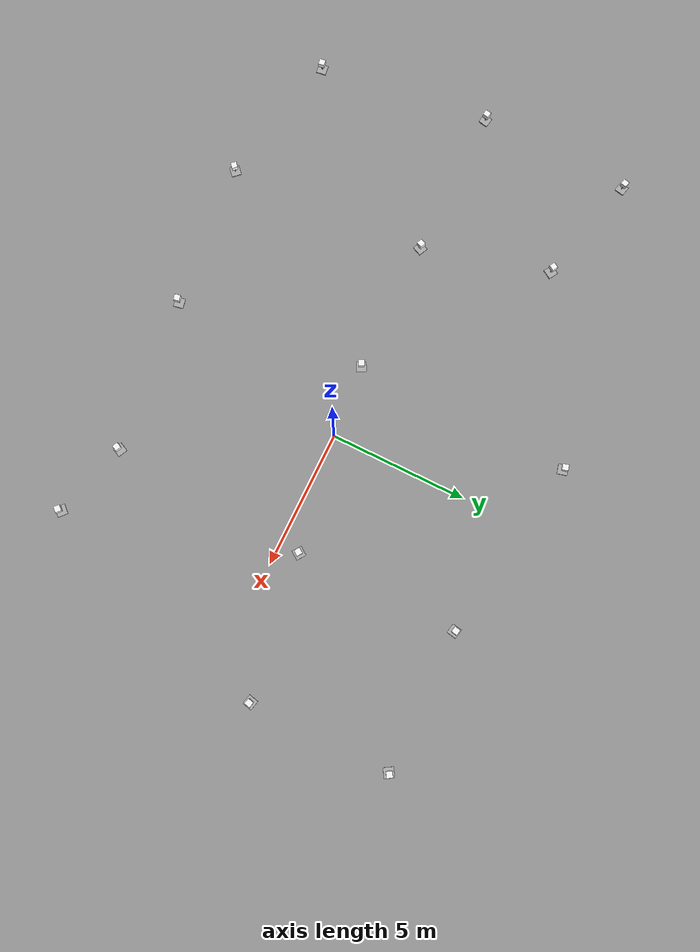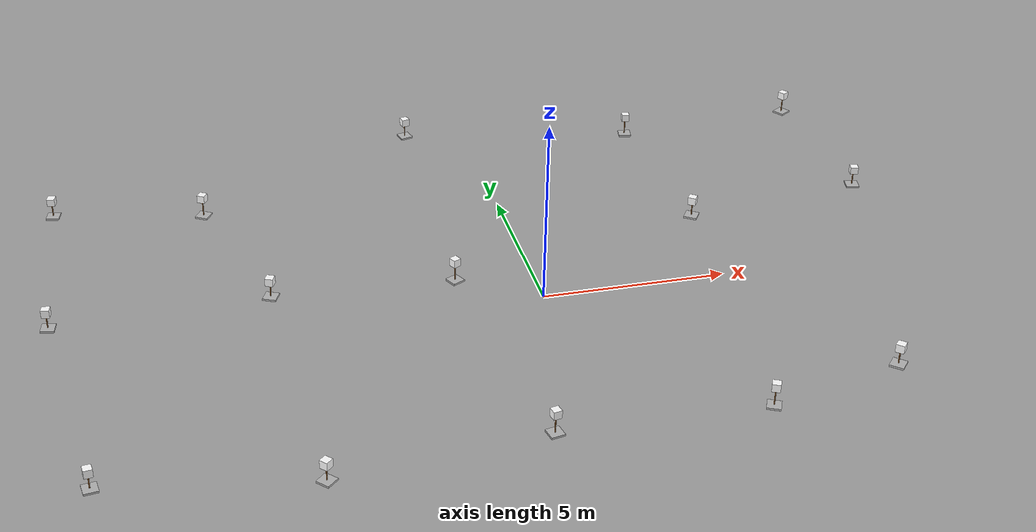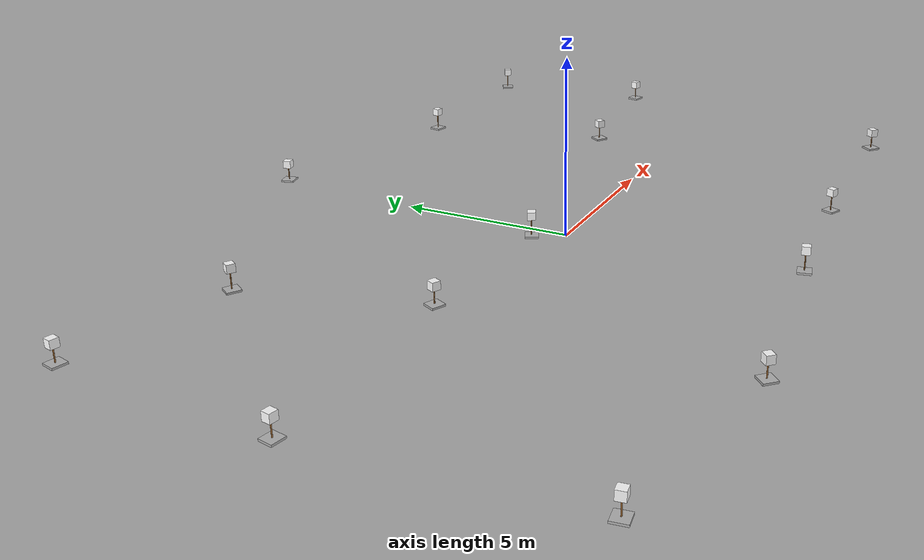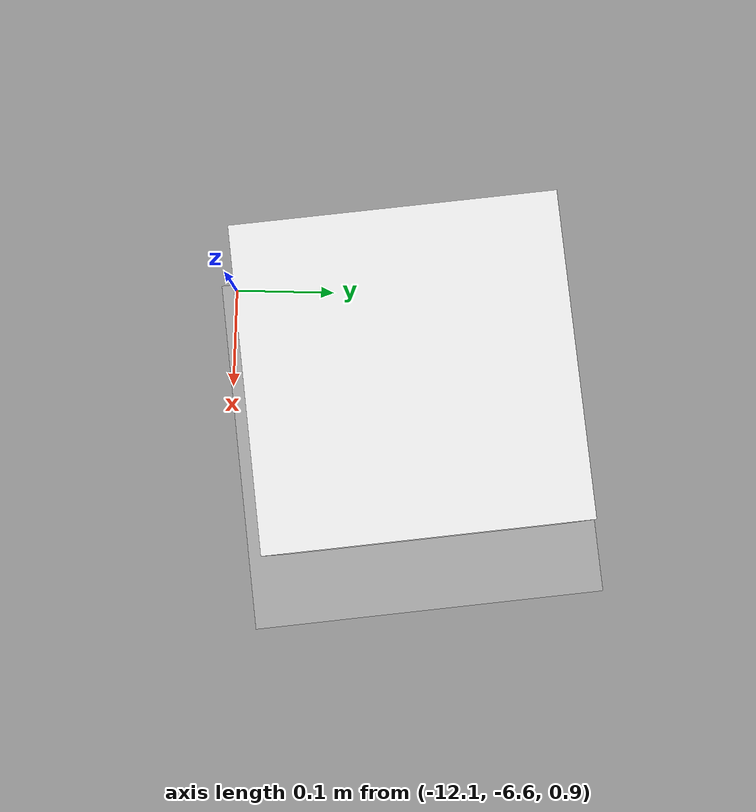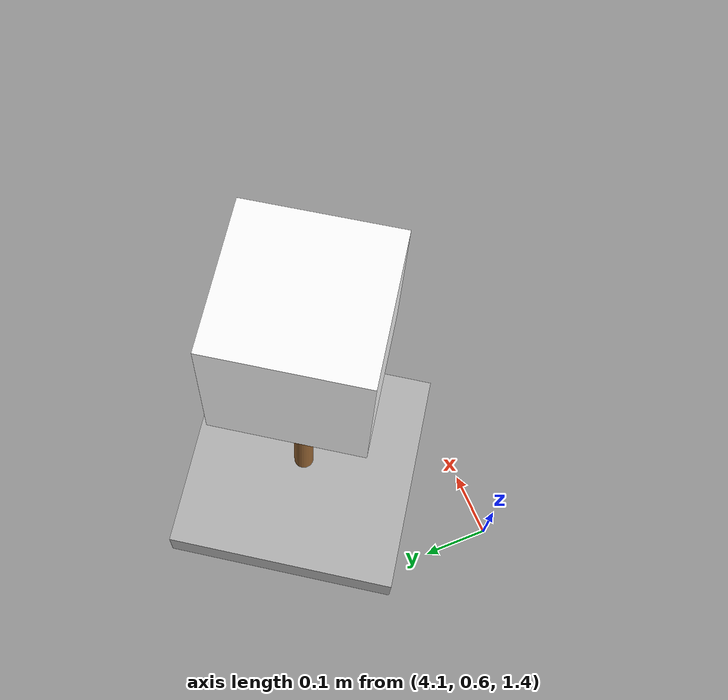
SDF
<sdf version="1.7">
 <world name="marsyard">
  <gravity>0 0 -9.81</gravity>
  <physics name="dart_physics" type="ignored">
   <max_step_size>0.003</max_step_size>
   <real_time_update_rate>333</real_time_update_rate>
   <real_time_factor>1.0</real_time_factor>
  </physics>
  <plugin filename="ignition-gazebo-physics-system" name="ignition::gazebo::systems::Physics"/>
  <plugin filename="ignition-gazebo-user-commands-system" name="ignition::gazebo::systems::UserCommands"/>
  <plugin filename="ignition-gazebo-scene-broadcaster-system" name="ignition::gazebo::systems::SceneBroadcaster"/>
  <plugin filename="ignition-gazebo-contact-system" name="ignition::gazebo::systems::Contact"/>
  <plugin filename="ignition-gazebo-sensors-system" name="ignition::gazebo::systems::Sensors">
   <render_engine>ogre2</render_engine>
  </plugin>
  <plugin filename="ignition-gazebo-imu-system" name="ignition::gazebo::systems::Imu"/>
  <plugin filename="ignition-gazebo-magnetometer-system" name="ignition::gazebo::systems::Magnetometer"/>
  <scene>
   <ambient>0.95 0.95 0.95 1</ambient>
   <background>0.70 0.70 0.70 1</background>
   <shadows>false</shadows>
  </scene>
  <light type="directional" name="sun">
   <cast_shadows>false</cast_shadows>
   <pose>0 0 30 0 0 0</pose>
   <diffuse>1 1 1 1</diffuse>
   <specular>0.15 0.15 0.15 1</specular>
   <direction>-0.35 0.1 -0.93</direction>
  </light>
  <model name="ArUco_1">
   <pose>-12.450300 5.334200 1.029715 0.000000 0.000000 2.923259</pose>
   <include><uri>model://aruco_1</uri></include>
  </model>
  <model name="ArUco_2">
   <pose>-8.450300 4.334200 1.099796 0.000000 0.000000 1.027116</pose>
   <include><uri>model://aruco_2</uri></include>
  </model>
  <model name="ArUco_3">
   <pose>-2.200300 7.584200 1.154883 0.000000 0.000000 -1.328753</pose>
   <include><uri>model://aruco_3</uri></include>
  </model>
  <model name="ArUco_4">
   <pose>4.299700 6.584200 0.990323 0.000000 0.000000 2.960046</pose>
   <include><uri>model://aruco_4</uri></include>
  </model>
  <model name="ArUco_5">
   <pose>9.299700 6.584200 1.162188 0.000000 0.000000 -2.583246</pose>
   <include><uri>model://aruco_5</uri></include>
  </model>
  <model name="ArUco_6">
   <pose>-12.700300 -0.165800 1.010542 0.000000 0.000000 -0.177926</pose>
   <include><uri>model://aruco_6</uri></include>
  </model>
  <model name="ArUco_7">
   <pose>-7.200300 -0.165800 1.131783 0.000000 0.000000 -0.438855</pose>
   <include><uri>model://aruco_7</uri></include>
  </model>
  <model name="ArUco_8">
   <pose>-2.450300 -0.165800 0.946400 0.000000 0.000000 2.031929</pose>
   <include><uri>model://aruco_8</uri></include>
  </model>
  <model name="ArUco_9">
   <pose>4.299700 0.834200 1.425683 0.000000 0.000000 -0.599702</pose>
   <include><uri>model://aruco_9</uri></include>
  </model>
  <model name="ArUco_10">
   <pose>9.299700 1.584200 1.341597 0.000000 0.000000 -0.225532</pose>
   <include><uri>model://aruco_10</uri></include>
  </model>
  <model name="ArUco_11">
   <pose>-11.950300 -6.415800 0.873342 0.000000 0.000000 -3.004204</pose>
   <include><uri>model://aruco_11</uri></include>
  </model>
  <model name="ArUco_12">
   <pose>-6.950300 -7.415800 0.976442 0.000000 0.000000 2.324719</pose>
   <include><uri>model://aruco_12</uri></include>
  </model>
  <model name="ArUco_13">
   <pose>-1.700300 -6.915800 0.976192 0.000000 0.000000 -2.940575</pose>
   <include><uri>model://aruco_13</uri></include>
  </model>
  <model name="ArUco_14">
   <pose>3.799700 -6.415800 0.451417 0.000000 0.000000 -2.017956</pose>
   <include><uri>model://aruco_14</uri></include>
  </model>
  <model name="ArUco_15">
   <pose>6.549700 -6.915800 1.544783 0.000000 0.000000 0.835951</pose>
   <include><uri>model://aruco_15</uri></include>
  </model>
 </world>
</sdf>

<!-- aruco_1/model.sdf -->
<sdf version="1.6">
  <model name="aruco_1">
    <static>true</static>
    <link name="link">
      <visual name="base_visual">
        <pose>0 0 0.025 0 0 0</pose>
        <geometry>
          <box>
            <size>0.35 0.35 0.05</size>
          </box>
        </geometry>
        <material>
          <ambient>0.7 0.7 0.7 1</ambient>
          <diffuse>0.7 0.7 0.7 1</diffuse>
        </material>
      </visual>
      <collision name="base_collision">
        <pose>0 0 0.025 0 0 0</pose>
        <geometry>
          <box>
            <size>0.35 0.35 0.05</size>
          </box>
        </geometry>
      </collision>
      <visual name="pole_visual">
        <pose>0 0 0.228500 0 0 0</pose>
        <geometry>
          <cylinder>
            <radius>0.015</radius>
            <length>0.357000</length>
          </cylinder>
        </geometry>
        <material>
          <ambient>0.6 0.4 0.2 1</ambient>
          <diffuse>0.6 0.4 0.2 1</diffuse>
        </material>
      </visual>
      <collision name="pole_collision">
        <pose>0 0 0.228500 0 0 0</pose>
        <geometry>
          <cylinder>
            <radius>0.015</radius>
            <length>0.357000</length>
          </cylinder>
        </geometry>
      </collision>
      <visual name="head_visual">
        <pose>0 0 0.496250 0 0 0</pose>
        <geometry>
          <box>
            <size>0.21 0.21 0.21</size>
          </box>
        </geometry>
        <material>
          <ambient>1 1 1 1</ambient>
          <diffuse>1 1 1 1</diffuse>
          <pbr>
            <metal>
              <albedo_map>model://aruco_1/materials/textures/marker_1.png</albedo_map>
            </metal>
          </pbr>
        </material>
      </visual>
      <collision name="head_collision">
        <pose>0 0 0.496250 0 0 0</pose>
        <geometry>
          <box>
            <size>0.21 0.21 0.21</size>
          </box>
        </geometry>
      </collision>
    </link>
  </model>
</sdf>

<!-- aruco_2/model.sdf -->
<sdf version="1.6">
  <model name="aruco_2">
    <static>true</static>
    <link name="link">
      <!-- Concrete Base -->
      <visual name="base_visual">
        <pose>0 0 0.025 0 0 0</pose>
        <geometry>
          <box>
            <size>0.35 0.35 0.05</size>
          </box>
        </geometry>
        <material>
          <ambient>0.7 0.7 0.7 1</ambient>
          <diffuse>0.7 0.7 0.7 1</diffuse>
        </material>
      </visual>
      <collision name="base_collision">
        <pose>0 0 0.025 0 0 0</pose>
        <geometry>
          <box>
            <size>0.35 0.35 0.05</size>
          </box>
        </geometry>
      </collision>

      <!-- Wooden Pole -->
      <visual name="pole_visual">
        <pose>0 0 0.26 0 0 0</pose>
        <geometry>
          <cylinder>
            <radius>0.015</radius>
            <length>0.42</length>
          </cylinder>
        </geometry>
        <material>
          <ambient>0.6 0.4 0.2 1</ambient>
          <diffuse>0.6 0.4 0.2 1</diffuse>
        </material>
      </visual>
      <collision name="pole_collision">
        <pose>0 0 0.26 0 0 0</pose>
        <geometry>
          <cylinder>
            <radius>0.015</radius>
            <length>0.42</length>
          </cylinder>
        </geometry>
      </collision>

      <!-- Head Box with ArUco Texture -->
      <visual name="head_visual">
        <pose>0 0 0.575 0 0 0</pose>
        <geometry>
          <box>
            <size>0.21 0.21 0.21</size>
          </box>
        </geometry>
        <material>
          <ambient>1 1 1 1</ambient>
          <diffuse>1 1 1 1</diffuse>
          <pbr>
            <metal>
              <albedo_map>model://aruco_2/materials/textures/marker_2.png</albedo_map>
            </metal>
          </pbr>
        </material>
      </visual>
      <collision name="head_collision">
        <pose>0 0 0.575 0 0 0</pose>
        <geometry>
          <box>
            <size>0.21 0.21 0.21</size>
          </box>
        </geometry>
      </collision>
    </link>
  </model>
</sdf>

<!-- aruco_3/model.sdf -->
<sdf version="1.6">
  <model name="aruco_3">
    <static>true</static>
    <link name="link">
      <visual name="base_visual">
        <pose>0 0 0.025 0 0 0</pose>
        <geometry>
          <box>
            <size>0.35 0.35 0.05</size>
          </box>
        </geometry>
        <material>
          <ambient>0.7 0.7 0.7 1</ambient>
          <diffuse>0.7 0.7 0.7 1</diffuse>
        </material>
      </visual>
      <collision name="base_collision">
        <pose>0 0 0.025 0 0 0</pose>
        <geometry>
          <box>
            <size>0.35 0.35 0.05</size>
          </box>
        </geometry>
      </collision>
      <visual name="pole_visual">
        <pose>0 0 0.228500 0 0 0</pose>
        <geometry>
          <cylinder>
            <radius>0.015</radius>
            <length>0.357000</length>
          </cylinder>
        </geometry>
        <material>
          <ambient>0.6 0.4 0.2 1</ambient>
          <diffuse>0.6 0.4 0.2 1</diffuse>
        </material>
      </visual>
      <collision name="pole_collision">
        <pose>0 0 0.228500 0 0 0</pose>
        <geometry>
          <cylinder>
            <radius>0.015</radius>
            <length>0.357000</length>
          </cylinder>
        </geometry>
      </collision>
      <visual name="head_visual">
        <pose>0 0 0.496250 0 0 0</pose>
        <geometry>
          <box>
            <size>0.21 0.21 0.21</size>
          </box>
        </geometry>
        <material>
          <ambient>1 1 1 1</ambient>
          <diffuse>1 1 1 1</diffuse>
          <pbr>
            <metal>
              <albedo_map>model://aruco_3/materials/textures/marker_3.png</albedo_map>
            </metal>
          </pbr>
        </material>
      </visual>
      <collision name="head_collision">
        <pose>0 0 0.496250 0 0 0</pose>
        <geometry>
          <box>
            <size>0.21 0.21 0.21</size>
          </box>
        </geometry>
      </collision>
    </link>
  </model>
</sdf>

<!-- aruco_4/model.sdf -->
<sdf version="1.6">
  <model name="aruco_4">
    <static>true</static>
    <link name="link">
      <!-- Concrete Base -->
      <visual name="base_visual">
        <pose>0 0 0.025 0 0 0</pose>
        <geometry>
          <box>
            <size>0.35 0.35 0.05</size>
          </box>
        </geometry>
        <material>
          <ambient>0.7 0.7 0.7 1</ambient>
          <diffuse>0.7 0.7 0.7 1</diffuse>
        </material>
      </visual>
      <collision name="base_collision">
        <pose>0 0 0.025 0 0 0</pose>
        <geometry>
          <box>
            <size>0.35 0.35 0.05</size>
          </box>
        </geometry>
      </collision>

      <!-- Wooden Pole -->
      <visual name="pole_visual">
        <pose>0 0 0.26 0 0 0</pose>
        <geometry>
          <cylinder>
            <radius>0.015</radius>
            <length>0.42</length>
          </cylinder>
        </geometry>
        <material>
          <ambient>0.6 0.4 0.2 1</ambient>
          <diffuse>0.6 0.4 0.2 1</diffuse>
        </material>
      </visual>
      <collision name="pole_collision">
        <pose>0 0 0.26 0 0 0</pose>
        <geometry>
          <cylinder>
            <radius>0.015</radius>
            <length>0.42</length>
          </cylinder>
        </geometry>
      </collision>

      <!-- Head Box with ArUco Texture -->
      <visual name="head_visual">
        <pose>0 0 0.575 0 0 0</pose>
        <geometry>
          <box>
            <size>0.21 0.21 0.21</size>
          </box>
        </geometry>
        <material>
          <ambient>1 1 1 1</ambient>
          <diffuse>1 1 1 1</diffuse>
          <pbr>
            <metal>
              <albedo_map>model://aruco_4/materials/textures/marker_4.png</albedo_map>
            </metal>
          </pbr>
        </material>
      </visual>
      <collision name="head_collision">
        <pose>0 0 0.575 0 0 0</pose>
        <geometry>
          <box>
            <size>0.21 0.21 0.21</size>
          </box>
        </geometry>
      </collision>
    </link>
  </model>
</sdf>

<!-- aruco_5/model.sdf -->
<sdf version="1.6">
  <model name="aruco_5">
    <static>true</static>
    <link name="link">
      <!-- Concrete Base -->
      <visual name="base_visual">
        <pose>0 0 0.025 0 0 0</pose>
        <geometry>
          <box>
            <size>0.35 0.35 0.05</size>
          </box>
        </geometry>
        <material>
          <ambient>0.7 0.7 0.7 1</ambient>
          <diffuse>0.7 0.7 0.7 1</diffuse>
        </material>
      </visual>
      <collision name="base_collision">
        <pose>0 0 0.025 0 0 0</pose>
        <geometry>
          <box>
            <size>0.35 0.35 0.05</size>
          </box>
        </geometry>
      </collision>

      <!-- Wooden Pole -->
      <visual name="pole_visual">
        <pose>0 0 0.26 0 0 0</pose>
        <geometry>
          <cylinder>
            <radius>0.015</radius>
            <length>0.42</length>
          </cylinder>
        </geometry>
        <material>
          <ambient>0.6 0.4 0.2 1</ambient>
          <diffuse>0.6 0.4 0.2 1</diffuse>
        </material>
      </visual>
      <collision name="pole_collision">
        <pose>0 0 0.26 0 0 0</pose>
        <geometry>
          <cylinder>
            <radius>0.015</radius>
            <length>0.42</length>
          </cylinder>
        </geometry>
      </collision>

      <!-- Head Box with ArUco Texture -->
      <visual name="head_visual">
        <pose>0 0 0.575 0 0 0</pose>
        <geometry>
          <box>
            <size>0.21 0.21 0.21</size>
          </box>
        </geometry>
        <material>
          <ambient>1 1 1 1</ambient>
          <diffuse>1 1 1 1</diffuse>
          <pbr>
            <metal>
              <albedo_map>model://aruco_5/materials/textures/marker_5.png</albedo_map>
            </metal>
          </pbr>
        </material>
      </visual>
      <collision name="head_collision">
        <pose>0 0 0.575 0 0 0</pose>
        <geometry>
          <box>
            <size>0.21 0.21 0.21</size>
          </box>
        </geometry>
      </collision>
    </link>
  </model>
</sdf>

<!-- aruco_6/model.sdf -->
<sdf version="1.6">
  <model name="aruco_6">
    <static>true</static>
    <link name="link">
      <visual name="base_visual">
        <pose>0 0 0.025 0 0 0</pose>
        <geometry>
          <box>
            <size>0.35 0.35 0.05</size>
          </box>
        </geometry>
        <material>
          <ambient>0.7 0.7 0.7 1</ambient>
          <diffuse>0.7 0.7 0.7 1</diffuse>
        </material>
      </visual>
      <collision name="base_collision">
        <pose>0 0 0.025 0 0 0</pose>
        <geometry>
          <box>
            <size>0.35 0.35 0.05</size>
          </box>
        </geometry>
      </collision>
      <visual name="pole_visual">
        <pose>0 0 0.228500 0 0 0</pose>
        <geometry>
          <cylinder>
            <radius>0.015</radius>
            <length>0.357000</length>
          </cylinder>
        </geometry>
        <material>
          <ambient>0.6 0.4 0.2 1</ambient>
          <diffuse>0.6 0.4 0.2 1</diffuse>
        </material>
      </visual>
      <collision name="pole_collision">
        <pose>0 0 0.228500 0 0 0</pose>
        <geometry>
          <cylinder>
            <radius>0.015</radius>
            <length>0.357000</length>
          </cylinder>
        </geometry>
      </collision>
      <visual name="head_visual">
        <pose>0 0 0.496250 0 0 0</pose>
        <geometry>
          <box>
            <size>0.21 0.21 0.21</size>
          </box>
        </geometry>
        <material>
          <ambient>1 1 1 1</ambient>
          <diffuse>1 1 1 1</diffuse>
          <pbr>
            <metal>
              <albedo_map>model://aruco_6/materials/textures/marker_6.png</albedo_map>
            </metal>
          </pbr>
        </material>
      </visual>
      <collision name="head_collision">
        <pose>0 0 0.496250 0 0 0</pose>
        <geometry>
          <box>
            <size>0.21 0.21 0.21</size>
          </box>
        </geometry>
      </collision>
    </link>
  </model>
</sdf>

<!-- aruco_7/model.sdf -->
<sdf version="1.6">
  <model name="aruco_7">
    <static>true</static>
    <link name="link">
      <visual name="base_visual">
        <pose>0 0 0.025 0 0 0</pose>
        <geometry>
          <box>
            <size>0.35 0.35 0.05</size>
          </box>
        </geometry>
        <material>
          <ambient>0.7 0.7 0.7 1</ambient>
          <diffuse>0.7 0.7 0.7 1</diffuse>
        </material>
      </visual>
      <collision name="base_collision">
        <pose>0 0 0.025 0 0 0</pose>
        <geometry>
          <box>
            <size>0.35 0.35 0.05</size>
          </box>
        </geometry>
      </collision>
      <visual name="pole_visual">
        <pose>0 0 0.228500 0 0 0</pose>
        <geometry>
          <cylinder>
            <radius>0.015</radius>
            <length>0.357000</length>
          </cylinder>
        </geometry>
        <material>
          <ambient>0.6 0.4 0.2 1</ambient>
          <diffuse>0.6 0.4 0.2 1</diffuse>
        </material>
      </visual>
      <collision name="pole_collision">
        <pose>0 0 0.228500 0 0 0</pose>
        <geometry>
          <cylinder>
            <radius>0.015</radius>
            <length>0.357000</length>
          </cylinder>
        </geometry>
      </collision>
      <visual name="head_visual">
        <pose>0 0 0.496250 0 0 0</pose>
        <geometry>
          <box>
            <size>0.21 0.21 0.21</size>
          </box>
        </geometry>
        <material>
          <ambient>1 1 1 1</ambient>
          <diffuse>1 1 1 1</diffuse>
          <pbr>
            <metal>
              <albedo_map>model://aruco_7/materials/textures/marker_7.png</albedo_map>
            </metal>
          </pbr>
        </material>
      </visual>
      <collision name="head_collision">
        <pose>0 0 0.496250 0 0 0</pose>
        <geometry>
          <box>
            <size>0.21 0.21 0.21</size>
          </box>
        </geometry>
      </collision>
    </link>
  </model>
</sdf>

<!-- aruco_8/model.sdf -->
<sdf version="1.6">
  <model name="aruco_8">
    <static>true</static>
    <link name="link">
      <!-- Concrete Base -->
      <visual name="base_visual">
        <pose>0 0 0.025 0 0 0</pose>
        <geometry>
          <box>
            <size>0.35 0.35 0.05</size>
          </box>
        </geometry>
        <material>
          <ambient>0.7 0.7 0.7 1</ambient>
          <diffuse>0.7 0.7 0.7 1</diffuse>
        </material>
      </visual>
      <collision name="base_collision">
        <pose>0 0 0.025 0 0 0</pose>
        <geometry>
          <box>
            <size>0.35 0.35 0.05</size>
          </box>
        </geometry>
      </collision>

      <!-- Wooden Pole -->
      <visual name="pole_visual">
        <pose>0 0 0.26 0 0 0</pose>
        <geometry>
          <cylinder>
            <radius>0.015</radius>
            <length>0.42</length>
          </cylinder>
        </geometry>
        <material>
          <ambient>0.6 0.4 0.2 1</ambient>
          <diffuse>0.6 0.4 0.2 1</diffuse>
        </material>
      </visual>
      <collision name="pole_collision">
        <pose>0 0 0.26 0 0 0</pose>
        <geometry>
          <cylinder>
            <radius>0.015</radius>
            <length>0.42</length>
          </cylinder>
        </geometry>
      </collision>

      <!-- Head Box with ArUco Texture -->
      <visual name="head_visual">
        <pose>0 0 0.575 0 0 0</pose>
        <geometry>
          <box>
            <size>0.21 0.21 0.21</size>
          </box>
        </geometry>
        <material>
          <ambient>1 1 1 1</ambient>
          <diffuse>1 1 1 1</diffuse>
          <pbr>
            <metal>
              <albedo_map>model://aruco_8/materials/textures/marker_8.png</albedo_map>
            </metal>
          </pbr>
        </material>
      </visual>
      <collision name="head_collision">
        <pose>0 0 0.575 0 0 0</pose>
        <geometry>
          <box>
            <size>0.21 0.21 0.21</size>
          </box>
        </geometry>
      </collision>
    </link>
  </model>
</sdf>

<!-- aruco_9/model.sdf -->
<sdf version="1.6">
  <model name="aruco_9">
    <static>true</static>
    <link name="link">
      <visual name="base_visual">
        <pose>0 0 0.025 0 0 0</pose>
        <geometry>
          <box>
            <size>0.35 0.35 0.05</size>
          </box>
        </geometry>
        <material>
          <ambient>0.7 0.7 0.7 1</ambient>
          <diffuse>0.7 0.7 0.7 1</diffuse>
        </material>
      </visual>
      <collision name="base_collision">
        <pose>0 0 0.025 0 0 0</pose>
        <geometry>
          <box>
            <size>0.35 0.35 0.05</size>
          </box>
        </geometry>
      </collision>
      <visual name="pole_visual">
        <pose>0 0 0.228500 0 0 0</pose>
        <geometry>
          <cylinder>
            <radius>0.015</radius>
            <length>0.357000</length>
          </cylinder>
        </geometry>
        <material>
          <ambient>0.6 0.4 0.2 1</ambient>
          <diffuse>0.6 0.4 0.2 1</diffuse>
        </material>
      </visual>
      <collision name="pole_collision">
        <pose>0 0 0.228500 0 0 0</pose>
        <geometry>
          <cylinder>
            <radius>0.015</radius>
            <length>0.357000</length>
          </cylinder>
        </geometry>
      </collision>
      <visual name="head_visual">
        <pose>0 0 0.496250 0 0 0</pose>
        <geometry>
          <box>
            <size>0.21 0.21 0.21</size>
          </box>
        </geometry>
        <material>
          <ambient>1 1 1 1</ambient>
          <diffuse>1 1 1 1</diffuse>
          <pbr>
            <metal>
              <albedo_map>model://aruco_9/materials/textures/marker_9.png</albedo_map>
            </metal>
          </pbr>
        </material>
      </visual>
      <collision name="head_collision">
        <pose>0 0 0.496250 0 0 0</pose>
        <geometry>
          <box>
            <size>0.21 0.21 0.21</size>
          </box>
        </geometry>
      </collision>
    </link>
  </model>
</sdf>

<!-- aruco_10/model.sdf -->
<sdf version="1.6">
  <model name="aruco_10">
    <static>true</static>
    <link name="link">
      <visual name="base_visual">
        <pose>0 0 0.025 0 0 0</pose>
        <geometry>
          <box>
            <size>0.35 0.35 0.05</size>
          </box>
        </geometry>
        <material>
          <ambient>0.7 0.7 0.7 1</ambient>
          <diffuse>0.7 0.7 0.7 1</diffuse>
        </material>
      </visual>
      <collision name="base_collision">
        <pose>0 0 0.025 0 0 0</pose>
        <geometry>
          <box>
            <size>0.35 0.35 0.05</size>
          </box>
        </geometry>
      </collision>
      <visual name="pole_visual">
        <pose>0 0 0.228500 0 0 0</pose>
        <geometry>
          <cylinder>
            <radius>0.015</radius>
            <length>0.357000</length>
          </cylinder>
        </geometry>
        <material>
          <ambient>0.6 0.4 0.2 1</ambient>
          <diffuse>0.6 0.4 0.2 1</diffuse>
        </material>
      </visual>
      <collision name="pole_collision">
        <pose>0 0 0.228500 0 0 0</pose>
        <geometry>
          <cylinder>
            <radius>0.015</radius>
            <length>0.357000</length>
          </cylinder>
        </geometry>
      </collision>
      <visual name="head_visual">
        <pose>0 0 0.496250 0 0 0</pose>
        <geometry>
          <box>
            <size>0.21 0.21 0.21</size>
          </box>
        </geometry>
        <material>
          <ambient>1 1 1 1</ambient>
          <diffuse>1 1 1 1</diffuse>
          <pbr>
            <metal>
              <albedo_map>model://aruco_10/materials/textures/marker_10.png</albedo_map>
            </metal>
          </pbr>
        </material>
      </visual>
      <collision name="head_collision">
        <pose>0 0 0.496250 0 0 0</pose>
        <geometry>
          <box>
            <size>0.21 0.21 0.21</size>
          </box>
        </geometry>
      </collision>
    </link>
  </model>
</sdf>

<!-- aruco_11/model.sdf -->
<sdf version="1.6">
  <model name="aruco_11">
    <static>true</static>
    <link name="link">
      <visual name="base_visual">
        <pose>0 0 0.025 0 0 0</pose>
        <geometry>
          <box>
            <size>0.35 0.35 0.05</size>
          </box>
        </geometry>
        <material>
          <ambient>0.7 0.7 0.7 1</ambient>
          <diffuse>0.7 0.7 0.7 1</diffuse>
        </material>
      </visual>
      <collision name="base_collision">
        <pose>0 0 0.025 0 0 0</pose>
        <geometry>
          <box>
            <size>0.35 0.35 0.05</size>
          </box>
        </geometry>
      </collision>
      <visual name="pole_visual">
        <pose>0 0 0.228500 0 0 0</pose>
        <geometry>
          <cylinder>
            <radius>0.015</radius>
            <length>0.357000</length>
          </cylinder>
        </geometry>
        <material>
          <ambient>0.6 0.4 0.2 1</ambient>
          <diffuse>0.6 0.4 0.2 1</diffuse>
        </material>
      </visual>
      <collision name="pole_collision">
        <pose>0 0 0.228500 0 0 0</pose>
        <geometry>
          <cylinder>
            <radius>0.015</radius>
            <length>0.357000</length>
          </cylinder>
        </geometry>
      </collision>
      <visual name="head_visual">
        <pose>0 0 0.496250 0 0 0</pose>
        <geometry>
          <box>
            <size>0.21 0.21 0.21</size>
          </box>
        </geometry>
        <material>
          <ambient>1 1 1 1</ambient>
          <diffuse>1 1 1 1</diffuse>
          <pbr>
            <metal>
              <albedo_map>model://aruco_11/materials/textures/marker_11.png</albedo_map>
            </metal>
          </pbr>
        </material>
      </visual>
      <collision name="head_collision">
        <pose>0 0 0.496250 0 0 0</pose>
        <geometry>
          <box>
            <size>0.21 0.21 0.21</size>
          </box>
        </geometry>
      </collision>
    </link>
  </model>
</sdf>

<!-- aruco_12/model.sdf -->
<sdf version="1.6">
  <model name="aruco_12">
    <static>true</static>
    <link name="link">
      <visual name="base_visual">
        <pose>0 0 0.025 0 0 0</pose>
        <geometry>
          <box>
            <size>0.35 0.35 0.05</size>
          </box>
        </geometry>
        <material>
          <ambient>0.7 0.7 0.7 1</ambient>
          <diffuse>0.7 0.7 0.7 1</diffuse>
        </material>
      </visual>
      <collision name="base_collision">
        <pose>0 0 0.025 0 0 0</pose>
        <geometry>
          <box>
            <size>0.35 0.35 0.05</size>
          </box>
        </geometry>
      </collision>
      <visual name="pole_visual">
        <pose>0 0 0.228500 0 0 0</pose>
        <geometry>
          <cylinder>
            <radius>0.015</radius>
            <length>0.357000</length>
          </cylinder>
        </geometry>
        <material>
          <ambient>0.6 0.4 0.2 1</ambient>
          <diffuse>0.6 0.4 0.2 1</diffuse>
        </material>
      </visual>
      <collision name="pole_collision">
        <pose>0 0 0.228500 0 0 0</pose>
        <geometry>
          <cylinder>
            <radius>0.015</radius>
            <length>0.357000</length>
          </cylinder>
        </geometry>
      </collision>
      <visual name="head_visual">
        <pose>0 0 0.496250 0 0 0</pose>
        <geometry>
          <box>
            <size>0.21 0.21 0.21</size>
          </box>
        </geometry>
        <material>
          <ambient>1 1 1 1</ambient>
          <diffuse>1 1 1 1</diffuse>
          <pbr>
            <metal>
              <albedo_map>model://aruco_12/materials/textures/marker_12.png</albedo_map>
            </metal>
          </pbr>
        </material>
      </visual>
      <collision name="head_collision">
        <pose>0 0 0.496250 0 0 0</pose>
        <geometry>
          <box>
            <size>0.21 0.21 0.21</size>
          </box>
        </geometry>
      </collision>
    </link>
  </model>
</sdf>

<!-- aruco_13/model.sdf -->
<sdf version="1.6">
  <model name="aruco_13">
    <static>true</static>
    <link name="link">
      <!-- Concrete Base -->
      <visual name="base_visual">
        <pose>0 0 0.025 0 0 0</pose>
        <geometry>
          <box>
            <size>0.35 0.35 0.05</size>
          </box>
        </geometry>
        <material>
          <ambient>0.7 0.7 0.7 1</ambient>
          <diffuse>0.7 0.7 0.7 1</diffuse>
        </material>
      </visual>
      <collision name="base_collision">
        <pose>0 0 0.025 0 0 0</pose>
        <geometry>
          <box>
            <size>0.35 0.35 0.05</size>
          </box>
        </geometry>
      </collision>

      <!-- Wooden Pole -->
      <visual name="pole_visual">
        <pose>0 0 0.26 0 0 0</pose>
        <geometry>
          <cylinder>
            <radius>0.015</radius>
            <length>0.42</length>
          </cylinder>
        </geometry>
        <material>
          <ambient>0.6 0.4 0.2 1</ambient>
          <diffuse>0.6 0.4 0.2 1</diffuse>
        </material>
      </visual>
      <collision name="pole_collision">
        <pose>0 0 0.26 0 0 0</pose>
        <geometry>
          <cylinder>
            <radius>0.015</radius>
            <length>0.42</length>
          </cylinder>
        </geometry>
      </collision>

      <!-- Head Box with ArUco Texture -->
      <visual name="head_visual">
        <pose>0 0 0.575 0 0 0</pose>
        <geometry>
          <box>
            <size>0.21 0.21 0.21</size>
          </box>
        </geometry>
        <material>
          <ambient>1 1 1 1</ambient>
          <diffuse>1 1 1 1</diffuse>
          <pbr>
            <metal>
              <albedo_map>model://aruco_13/materials/textures/marker_13.png</albedo_map>
            </metal>
          </pbr>
        </material>
      </visual>
      <collision name="head_collision">
        <pose>0 0 0.575 0 0 0</pose>
        <geometry>
          <box>
            <size>0.21 0.21 0.21</size>
          </box>
        </geometry>
      </collision>
    </link>
  </model>
</sdf>

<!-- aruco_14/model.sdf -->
<sdf version="1.6">
  <model name="aruco_14">
    <static>true</static>
    <link name="link">
      <!-- Concrete Base -->
      <visual name="base_visual">
        <pose>0 0 0.025 0 0 0</pose>
        <geometry>
          <box>
            <size>0.35 0.35 0.05</size>
          </box>
        </geometry>
        <material>
          <ambient>0.7 0.7 0.7 1</ambient>
          <diffuse>0.7 0.7 0.7 1</diffuse>
        </material>
      </visual>
      <collision name="base_collision">
        <pose>0 0 0.025 0 0 0</pose>
        <geometry>
          <box>
            <size>0.35 0.35 0.05</size>
          </box>
        </geometry>
      </collision>

      <!-- Wooden Pole -->
      <visual name="pole_visual">
        <pose>0 0 0.26 0 0 0</pose>
        <geometry>
          <cylinder>
            <radius>0.015</radius>
            <length>0.42</length>
          </cylinder>
        </geometry>
        <material>
          <ambient>0.6 0.4 0.2 1</ambient>
          <diffuse>0.6 0.4 0.2 1</diffuse>
        </material>
      </visual>
      <collision name="pole_collision">
        <pose>0 0 0.26 0 0 0</pose>
        <geometry>
          <cylinder>
            <radius>0.015</radius>
            <length>0.42</length>
          </cylinder>
        </geometry>
      </collision>

      <!-- Head Box with ArUco Texture -->
      <visual name="head_visual">
        <pose>0 0 0.575 0 0 0</pose>
        <geometry>
          <box>
            <size>0.21 0.21 0.21</size>
          </box>
        </geometry>
        <material>
          <ambient>1 1 1 1</ambient>
          <diffuse>1 1 1 1</diffuse>
          <pbr>
            <metal>
              <albedo_map>model://aruco_14/materials/textures/marker_14.png</albedo_map>
            </metal>
          </pbr>
        </material>
      </visual>
      <collision name="head_collision">
        <pose>0 0 0.575 0 0 0</pose>
        <geometry>
          <box>
            <size>0.21 0.21 0.21</size>
          </box>
        </geometry>
      </collision>
    </link>
  </model>
</sdf>

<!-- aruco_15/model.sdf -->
<sdf version="1.6">
  <model name="aruco_15">
    <static>true</static>
    <link name="link">
      <visual name="base_visual">
        <pose>0 0 0.025 0 0 0</pose>
        <geometry>
          <box>
            <size>0.35 0.35 0.05</size>
          </box>
        </geometry>
        <material>
          <ambient>0.7 0.7 0.7 1</ambient>
          <diffuse>0.7 0.7 0.7 1</diffuse>
        </material>
      </visual>
      <collision name="base_collision">
        <pose>0 0 0.025 0 0 0</pose>
        <geometry>
          <box>
            <size>0.35 0.35 0.05</size>
          </box>
        </geometry>
      </collision>
      <visual name="pole_visual">
        <pose>0 0 0.228500 0 0 0</pose>
        <geometry>
          <cylinder>
            <radius>0.015</radius>
            <length>0.357000</length>
          </cylinder>
        </geometry>
        <material>
          <ambient>0.6 0.4 0.2 1</ambient>
          <diffuse>0.6 0.4 0.2 1</diffuse>
        </material>
      </visual>
      <collision name="pole_collision">
        <pose>0 0 0.228500 0 0 0</pose>
        <geometry>
          <cylinder>
            <radius>0.015</radius>
            <length>0.357000</length>
          </cylinder>
        </geometry>
      </collision>
      <visual name="head_visual">
        <pose>0 0 0.496250 0 0 0</pose>
        <geometry>
          <box>
            <size>0.21 0.21 0.21</size>
          </box>
        </geometry>
        <material>
          <ambient>1 1 1 1</ambient>
          <diffuse>1 1 1 1</diffuse>
          <pbr>
            <metal>
              <albedo_map>model://aruco_15/materials/textures/marker_15.png</albedo_map>
            </metal>
          </pbr>
        </material>
      </visual>
      <collision name="head_collision">
        <pose>0 0 0.496250 0 0 0</pose>
        <geometry>
          <box>
            <size>0.21 0.21 0.21</size>
          </box>
        </geometry>
      </collision>
    </link>
  </model>
</sdf>
